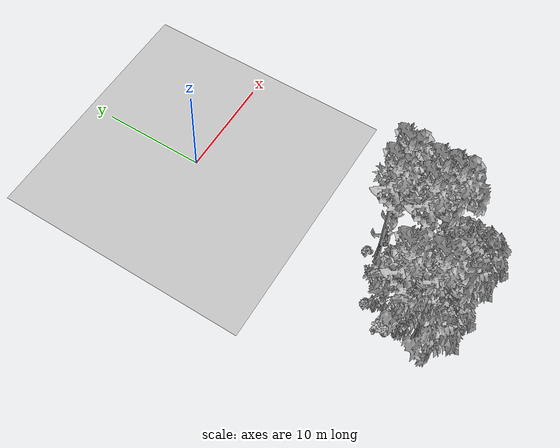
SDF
<sdf version="1.7">
 <world name="default">
  <model name="ground_plane">
   <static>1</static>
   <link name="link">
    <collision name="collision">
     <pose>-50 0 0 0 -0 0</pose>
     <geometry><plane><normal>0 0 1</normal><size>80 80</size></plane></geometry>
     <surface><contact><ode><min_depth>0.01</min_depth><max_vel>0</max_vel></ode></contact></surface>
    </collision>
    <visual name="grass">
     <cast_shadows>0</cast_shadows>
     <geometry>
      <mesh>
       <scale>0.46714285714285714 0.46714285714285714 0.1</scale>
       <uri>file://grass_plane/meshes/grass_plane.dae</uri>
      </mesh>
     </geometry>
    </visual>
   </link>
  </model>
  <model name="Tree 8">
   <static>1</static>
   <pose>2.041168191089575 -21.986346807292225 0 1.57079 -0 0</pose>
   <link name="link">
    <collision name="collision">
     <geometry><mesh><scale>3.5 5 3.5</scale><uri>model://tree_9/meshes/tree_9.obj</uri></mesh></geometry>
    </collision>
    <visual name="visual">
     <geometry><mesh><scale>3.5 5 3.5</scale><uri>model://tree_9/meshes/tree_9.obj</uri></mesh></geometry>
    </visual>
   </link>
  </model>
  <model name="Tree 21">
   <static>1</static>
   <pose>0.31561313747361197 -19.141215854268037 0 1.57079 -0 0</pose>
   <link name="link">
    <collision name="collision">
     <geometry><mesh><scale>3.5 5 3.5</scale><uri>model://tree_9/meshes/tree_9.obj</uri></mesh></geometry>
    </collision>
    <visual name="visual">
     <geometry><mesh><scale>3.5 5 3.5</scale><uri>model://tree_9/meshes/tree_9.obj</uri></mesh></geometry>
    </visual>
   </link>
  </model>
  <model name="Tree 30">
   <static>1</static>
   <pose>2.182418771725729 -23.290649198150717 0 1.57079 -0 0</pose>
   <link name="link">
    <collision name="collision">
     <geometry><mesh><scale>3.5 5 3.5</scale><uri>model://tree_9/meshes/tree_9.obj</uri></mesh></geometry>
    </collision>
    <visual name="visual">
     <geometry><mesh><scale>3.5 5 3.5</scale><uri>model://tree_9/meshes/tree_9.obj</uri></mesh></geometry>
    </visual>
   </link>
  </model>
  <model name="Tree 122">
   <static>1</static>
   <pose>-0.498609543470657 -26.062203316199557 0 1.57079 -0 0</pose>
   <link name="link">
    <collision name="collision">
     <geometry><mesh><scale>3.5 5 3.5</scale><uri>model://tree_2/meshes/tree_2.obj</uri></mesh></geometry>
    </collision>
    <visual name="visual">
     <geometry><mesh><scale>3.5 5 3.5</scale><uri>model://tree_2/meshes/tree_2.obj</uri></mesh></geometry>
    </visual>
   </link>
  </model>
  <model name="Tree 241">
   <static>1</static>
   <pose>-4.832309391513384 -25.373741015973863 0 1.57079 -0 0</pose>
   <link name="link">
    <collision name="collision">
     <geometry><mesh><scale>3.5 5 3.5</scale><uri>model://tree_9/meshes/tree_9.obj</uri></mesh></geometry>
    </collision>
    <visual name="visual">
     <geometry><mesh><scale>3.5 5 3.5</scale><uri>model://tree_9/meshes/tree_9.obj</uri></mesh></geometry>
    </visual>
   </link>
  </model>
  <model name="Tree 353">
   <static>1</static>
   <pose>0.3173132926374791 -22.086805406456005 0 1.57079 -0 0</pose>
   <link name="link">
    <collision name="collision">
     <geometry><mesh><scale>3.5 5 3.5</scale><uri>model://tree_9/meshes/tree_9.obj</uri></mesh></geometry>
    </collision>
    <visual name="visual">
     <geometry><mesh><scale>3.5 5 3.5</scale><uri>model://tree_9/meshes/tree_9.obj</uri></mesh></geometry>
    </visual>
   </link>
  </model>
  <model name="Tree 370">
   <static>1</static>
   <pose>-5.738569392581432 -25.71413254579153 0 1.57079 -0 0</pose>
   <link name="link">
    <collision name="collision">
     <geometry><mesh><scale>3.5 5 3.5</scale><uri>model://tree_2/meshes/tree_2.obj</uri></mesh></geometry>
    </collision>
    <visual name="visual">
     <geometry><mesh><scale>3.5 5 3.5</scale><uri>model://tree_2/meshes/tree_2.obj</uri></mesh></geometry>
    </visual>
   </link>
  </model>
  <model name="Tree 385">
   <static>1</static>
   <pose>2.315049728839952 -19.060830742046306 0 1.57079 -0 0</pose>
   <link name="link">
    <collision name="collision">
     <geometry><mesh><scale>3.5 5 3.5</scale><uri>model://tree_9/meshes/tree_9.obj</uri></mesh></geometry>
    </collision>
    <visual name="visual">
     <geometry><mesh><scale>3.5 5 3.5</scale><uri>model://tree_9/meshes/tree_9.obj</uri></mesh></geometry>
    </visual>
   </link>
  </model>
  <model name="Tree 415">
   <static>1</static>
   <pose>-4.779781587740857 -23.368901694039785 0 1.57079 -0 0</pose>
   <link name="link">
    <collision name="collision">
     <geometry><mesh><scale>3.5 5 3.5</scale><uri>model://tree_2/meshes/tree_2.obj</uri></mesh></geometry>
    </collision>
    <visual name="visual">
     <geometry><mesh><scale>3.5 5 3.5</scale><uri>model://tree_2/meshes/tree_2.obj</uri></mesh></geometry>
    </visual>
   </link>
  </model>
  <model name="Tree 636">
   <static>1</static>
   <pose>-5.428908897538207 -23.044186159958517 0 1.57079 -0 0</pose>
   <link name="link">
    <collision name="collision">
     <geometry><mesh><scale>3.5 5 3.5</scale><uri>model://tree_9/meshes/tree_9.obj</uri></mesh></geometry>
    </collision>
    <visual name="visual">
     <geometry><mesh><scale>3.5 5 3.5</scale><uri>model://tree_9/meshes/tree_9.obj</uri></mesh></geometry>
    </visual>
   </link>
  </model>
  <model name="Bush 4">
   <static>1</static>
   <pose>-5.760140309898389 -22.690243442253283 0 1.57079 -0 0</pose>
   <link name="link">
    <collision name="collision">
     <geometry><mesh><scale>2 2 2</scale><uri>model://bush_1/meshes/bush_1.obj</uri></mesh></geometry>
     <surface><contact><collide_without_contact>false</collide_without_contact></contact></surface>
    </collision>
    <visual name="visual">
     <geometry><mesh><scale>2 2 2</scale><uri>model://bush_1/meshes/bush_1.obj</uri></mesh></geometry>
    </visual>
   </link>
  </model>
  <model name="Bush 76">
   <static>1</static>
   <pose>-4.224286404970471 -20.394219710792854 0 1.57079 -0 0</pose>
   <link name="link">
    <collision name="collision">
     <geometry><mesh><scale>2 2 2</scale><uri>model://bush_2/meshes/bush_2.obj</uri></mesh></geometry>
     <surface><contact><collide_without_contact>false</collide_without_contact></contact></surface>
    </collision>
    <visual name="visual">
     <geometry><mesh><scale>2 2 2</scale><uri>model://bush_2/meshes/bush_2.obj</uri></mesh></geometry>
    </visual>
   </link>
  </model>
  <model name="Bush 82">
   <static>1</static>
   <pose>-3.577609682491527 -27.187367925332914 0 1.57079 -0 0</pose>
   <link name="link">
    <collision name="collision">
     <geometry><mesh><scale>2 2 2</scale><uri>model://bush_2/meshes/bush_2.obj</uri></mesh></geometry>
     <surface><contact><collide_without_contact>false</collide_without_contact></contact></surface>
    </collision>
    <visual name="visual">
     <geometry><mesh><scale>2 2 2</scale><uri>model://bush_2/meshes/bush_2.obj</uri></mesh></geometry>
    </visual>
   </link>
  </model>
  <model name="Bush 100">
   <static>1</static>
   <pose>-0.6353786347619703 -26.122366499674207 0 1.57079 -0 0</pose>
   <link name="link">
    <collision name="collision">
     <geometry><mesh><scale>2 2 2</scale><uri>model://bush_4/meshes/bush_4.obj</uri></mesh></geometry>
     <surface><contact><collide_without_contact>false</collide_without_contact></contact></surface>
    </collision>
    <visual name="visual">
     <geometry><mesh><scale>2 2 2</scale><uri>model://bush_4/meshes/bush_4.obj</uri></mesh></geometry>
    </visual>
   </link>
  </model>
  <model name="Bush 144">
   <static>1</static>
   <pose>0.04675022927195016 -21.441506981965706 0 1.57079 -0 0</pose>
   <link name="link">
    <collision name="collision">
     <geometry><mesh><scale>2 2 2</scale><uri>model://bush_4/meshes/bush_4.obj</uri></mesh></geometry>
     <surface><contact><collide_without_contact>false</collide_without_contact></contact></surface>
    </collision>
    <visual name="visual">
     <geometry><mesh><scale>2 2 2</scale><uri>model://bush_4/meshes/bush_4.obj</uri></mesh></geometry>
    </visual>
   </link>
  </model>
  <model name="Bush 256">
   <static>1</static>
   <pose>0.3286310442221776 -18.14098805922427 0 1.57079 -0 0</pose>
   <link name="link">
    <collision name="collision">
     <geometry><mesh><scale>2 2 2</scale><uri>model://bush_2/meshes/bush_2.obj</uri></mesh></geometry>
     <surface><contact><collide_without_contact>false</collide_without_contact></contact></surface>
    </collision>
    <visual name="visual">
     <geometry><mesh><scale>2 2 2</scale><uri>model://bush_2/meshes/bush_2.obj</uri></mesh></geometry>
    </visual>
   </link>
  </model>
  <model name="Bush 260">
   <static>1</static>
   <pose>1.869157379408506 -23.14490840065983 0 1.57079 -0 0</pose>
   <link name="link">
    <collision name="collision">
     <geometry><mesh><scale>2 2 2</scale><uri>model://bush_1/meshes/bush_1.obj</uri></mesh></geometry>
     <surface><contact><collide_without_contact>false</collide_without_contact></contact></surface>
    </collision>
    <visual name="visual">
     <geometry><mesh><scale>2 2 2</scale><uri>model://bush_1/meshes/bush_1.obj</uri></mesh></geometry>
    </visual>
   </link>
  </model>
  <model name="Bush 364">
   <static>1</static>
   <pose>-4.246732785072986 -26.373221489871916 0 1.57079 -0 0</pose>
   <link name="link">
    <collision name="collision">
     <geometry><mesh><scale>2 2 2</scale><uri>model://bush_5/meshes/bush_5.obj</uri></mesh></geometry>
     <surface><contact><collide_without_contact>false</collide_without_contact></contact></surface>
    </collision>
    <visual name="visual">
     <geometry><mesh><scale>2 2 2</scale><uri>model://bush_5/meshes/bush_5.obj</uri></mesh></geometry>
    </visual>
   </link>
  </model>
  <model name="Bush 374">
   <static>1</static>
   <pose>-1.1418622462505468 -26.317857529159294 0 1.57079 -0 0</pose>
   <link name="link">
    <collision name="collision">
     <geometry><mesh><scale>2 2 2</scale><uri>model://bush_2/meshes/bush_2.obj</uri></mesh></geometry>
     <surface><contact><collide_without_contact>false</collide_without_contact></contact></surface>
    </collision>
    <visual name="visual">
     <geometry><mesh><scale>2 2 2</scale><uri>model://bush_2/meshes/bush_2.obj</uri></mesh></geometry>
    </visual>
   </link>
  </model>
  <model name="Bush 483">
   <static>1</static>
   <pose>-0.9953013931263257 -20.896506168440865 0 1.57079 -0 0</pose>
   <link name="link">
    <collision name="collision">
     <geometry><mesh><scale>2 2 2</scale><uri>model://bush_0/meshes/bush_0.obj</uri></mesh></geometry>
     <surface><contact><collide_without_contact>false</collide_without_contact></contact></surface>
    </collision>
    <visual name="visual">
     <geometry><mesh><scale>2 2 2</scale><uri>model://bush_0/meshes/bush_0.obj</uri></mesh></geometry>
    </visual>
   </link>
  </model>
  <model name="Bush 502">
   <static>1</static>
   <pose>-2.6976873671742467 -26.039567913859614 0 1.57079 -0 0</pose>
   <link name="link">
    <collision name="collision">
     <geometry><mesh><scale>2 2 2</scale><uri>model://bush_2/meshes/bush_2.obj</uri></mesh></geometry>
     <surface><contact><collide_without_contact>false</collide_without_contact></contact></surface>
    </collision>
    <visual name="visual">
     <geometry><mesh><scale>2 2 2</scale><uri>model://bush_2/meshes/bush_2.obj</uri></mesh></geometry>
    </visual>
   </link>
  </model>
  <model name="Bush 622">
   <static>1</static>
   <pose>-1.6945109973247199 -19.343881866732346 0 1.57079 -0 0</pose>
   <link name="link">
    <collision name="collision">
     <geometry><mesh><scale>2 2 2</scale><uri>model://bush_4/meshes/bush_4.obj</uri></mesh></geometry>
     <surface><contact><collide_without_contact>false</collide_without_contact></contact></surface>
    </collision>
    <visual name="visual">
     <geometry><mesh><scale>2 2 2</scale><uri>model://bush_4/meshes/bush_4.obj</uri></mesh></geometry>
    </visual>
   </link>
  </model>
 </world>
</sdf>
